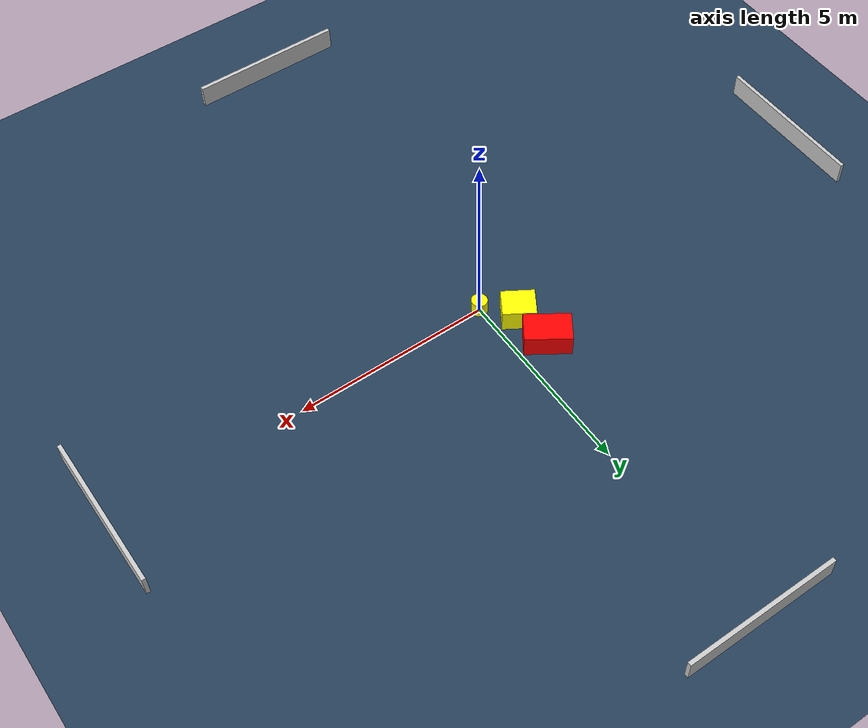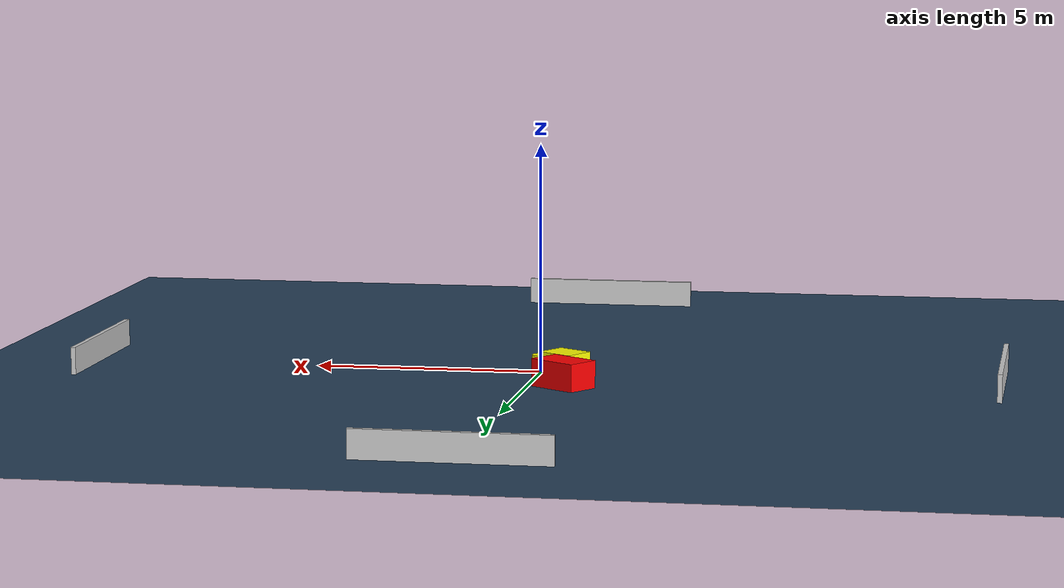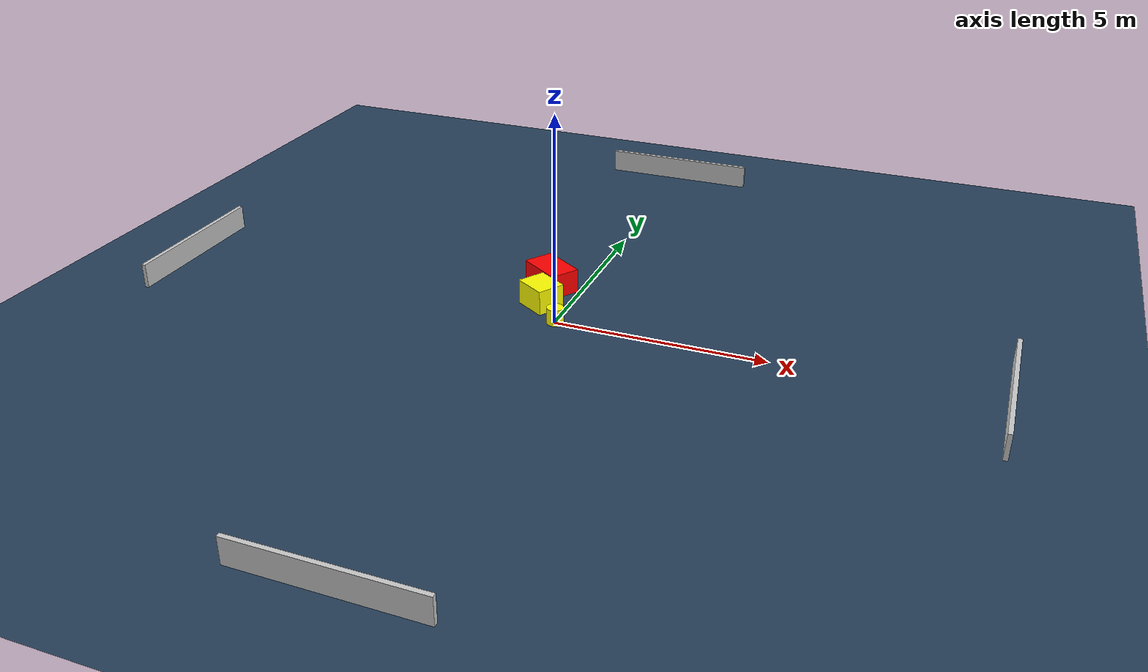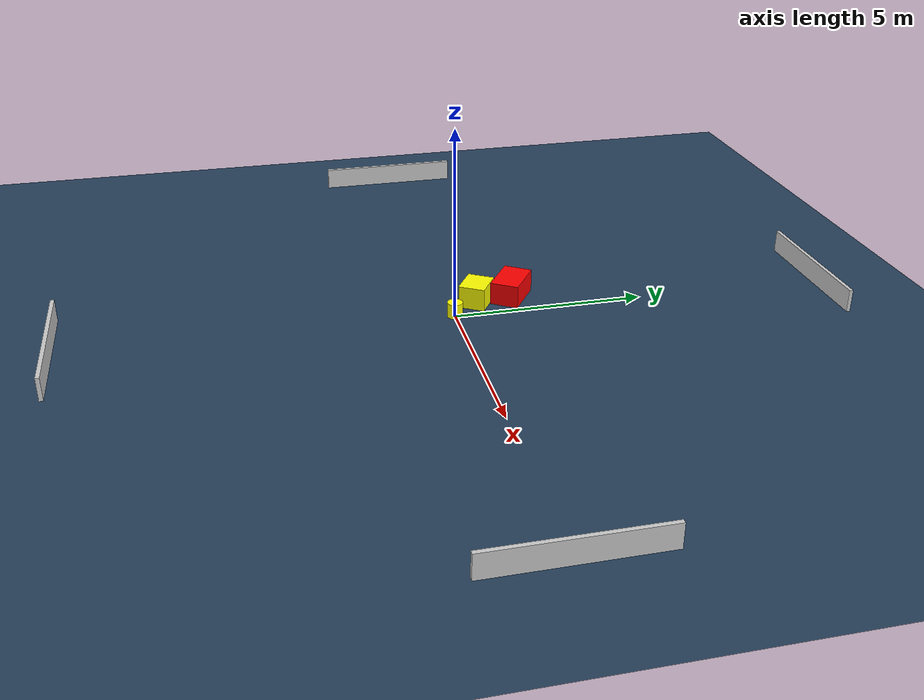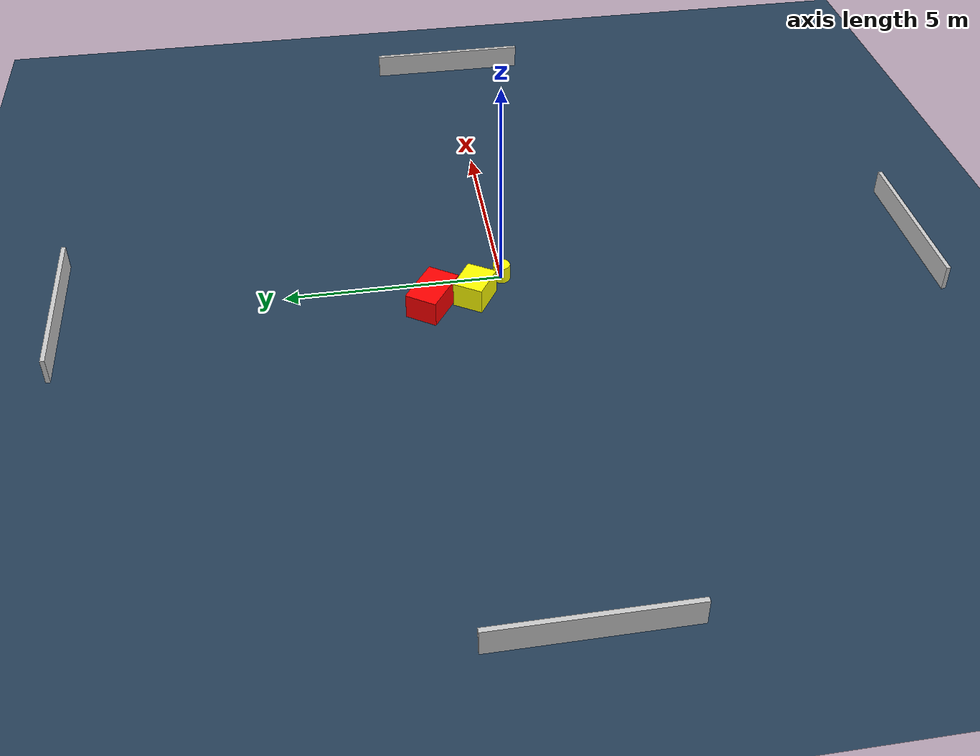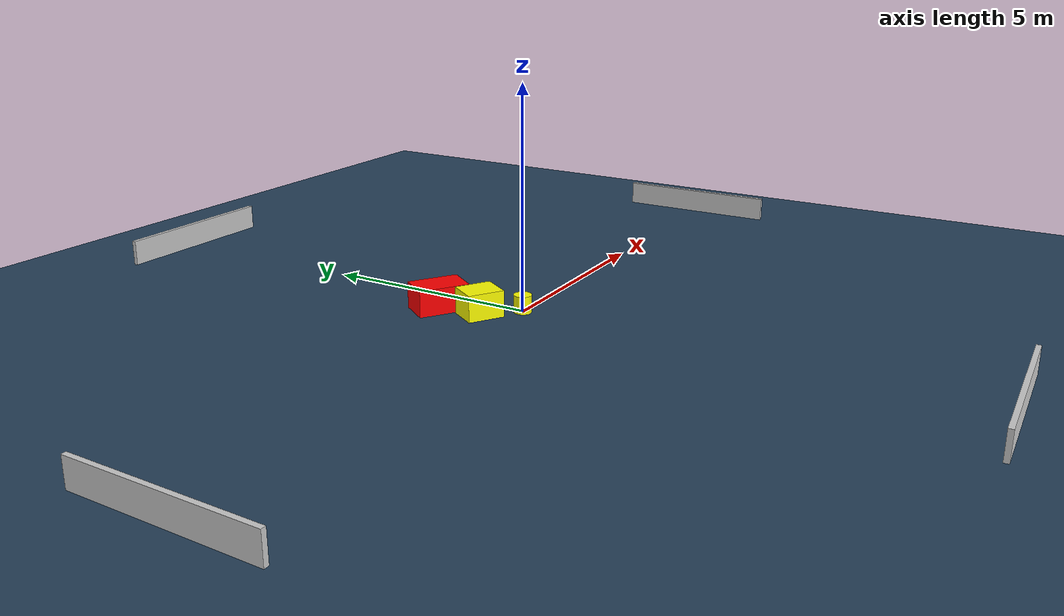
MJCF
<?xml version="1.0" ?>
<mujoco model="generated_environment">
  <option timestep="0.01" integrator="RK4" cone="elliptic"/>
  <default>
    <geom density="1"/>
  </default>
  <asset>
    <texture builtin="gradient" height="3072" name="skybox" rgb1="0.3 0.5 0.7" rgb2="0 0 0" type="skybox" width="512"/>
    <texture builtin="checker" height="300" name="groundplane" rgb1="0.2 0.3 0.4" rgb2="0.1 0.2 0.3" type="2d" width="300"/>
    <material name="groundplane" reflectance="0.2" texrepeat="5 5" texture="groundplane"/>
  </asset>
  <worldbody>
    <light dir="0 0 -1" directional="true" pos="0 0 1.5"/>
    <geom condim="3" friction="0.5 0.005 0.001" material="groundplane" name="floor" pos="0 0 0" size="0 0 0.05" type="plane"/>
    <body name="walls">
      <geom name="wall_1" condim="4" pos="-10.0 0.0 0.3" rgba="0.800000011920929 0.800000011920929 0.800000011920929 1.0" size="0.05 2.0 0.3" type="box"/>
      <geom name="wall_2" condim="4" pos="10.0 0.0 0.3" rgba="0.800000011920929 0.800000011920929 0.800000011920929 1.0" size="0.05 2.0 0.3" type="box"/>
      <geom name="wall_3" condim="4" pos="0.0 -10.0 0.3" rgba="0.800000011920929 0.800000011920929 0.800000011920929 1.0" size="2.0 0.05 0.3" type="box"/>
      <geom name="wall_4" condim="4" pos="0.0 10.0 0.3" rgba="0.800000011920929 0.800000011920929 0.800000011920929 1.0" size="2.0 0.05 0.3" type="box"/>
    </body>
    <body name="robot">
      <joint name="joint_x" type="slide" pos="0 0 0" axis="1 0 0"/>
      <joint name="joint_y" type="slide" pos="0 0 0" axis="0 1 0"/>
      <geom name="robot" type="cylinder" pos="0.0 0.0 0.2" size="0.2 0.2 0.0" mass="5.0" friction="1.0 0.005 0.0001" condim="4" rgba="1.0 1.0 0.0 1.0"/>
    </body>
    <body name="obstacle_1_movable">
      <geom name="obstacle_1_movable" condim="4" pos="-0.6372606920003472 0.710081040643554 0.3" euler="0 0 58.064264412190596" friction="0.0 0.005 0.001" rgba="1.0 1.0 0.0 1.0" size="0.34960801501994687 0.4159554433858572 0.3" type="box" mass="0.1"/>
      <joint type="free"/>
    </body>
    <body name="obstacle_2_static">
      <geom name="obstacle_2_static" condim="4" pos="-0.7683237528332837 1.6910342200780248 0.3" euler="0 0 236.20248400624712" friction="0.0 0.005 0.001" rgba="1.0 0.0 0.0 1.0" size="0.374063532987302 0.5788602075784349 0.3" type="box"/>
    </body>
  </worldbody>
  <actuator>
    <motor name="actuator_x" joint="joint_x" gear="1" ctrlrange="-1 1"/>
    <motor name="actuator_y" joint="joint_y" gear="1" ctrlrange="-1 1"/>
  </actuator>
</mujoco>
